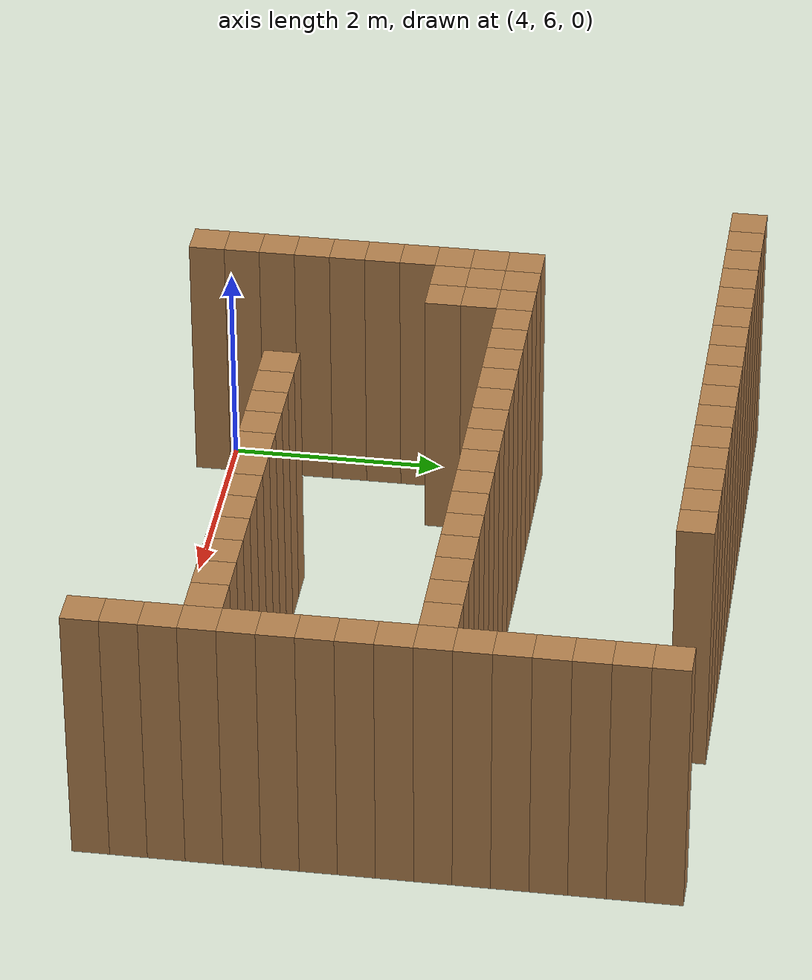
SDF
<sdf version="1.7">
 <model name="maze">
  <static>true</static>
  <link name="Wall_9">
   <collision name="Wall_9_Collision">
    <geometry><box><size>0.3333333333333333 0.3333333333333333 2.5</size></box></geometry>
    <pose>0 0 1.25 0 0 0</pose>
   </collision>
   <visual name="Wall_9_Visual">
    <pose>0 0 1.25 0 0 0</pose>
    <geometry><box><size>0.3333333333333333 0.3333333333333333 2.5</size></box></geometry>
    <material>
     <script><uri>file://media/materials/scripts/gazebo.material</uri><name>Gazebo/Wood</name></script>
     <ambient>1 1 1 1</ambient>
    </material>
    <meta><layer>0</layer></meta>
   </visual>
   <pose>3.1666666666666665 10.833333333333332 0 0 0 0</pose>
  </link>
  <link name="Wall_10">
   <collision name="Wall_10_Collision">
    <geometry><box><size>0.3333333333333333 0.3333333333333333 2.5</size></box></geometry>
    <pose>0 0 1.25 0 0 0</pose>
   </collision>
   <visual name="Wall_10_Visual">
    <pose>0 0 1.25 0 0 0</pose>
    <geometry><box><size>0.3333333333333333 0.3333333333333333 2.5</size></box></geometry>
    <material>
     <script><uri>file://media/materials/scripts/gazebo.material</uri><name>Gazebo/Wood</name></script>
     <ambient>1 1 1 1</ambient>
    </material>
    <meta><layer>0</layer></meta>
   </visual>
   <pose>3.4999999999999996 10.833333333333332 0 0 0 0</pose>
  </link>
  <link name="Wall_11">
   <collision name="Wall_11_Collision">
    <geometry><box><size>0.3333333333333333 0.3333333333333333 2.5</size></box></geometry>
    <pose>0 0 1.25 0 0 0</pose>
   </collision>
   <visual name="Wall_11_Visual">
    <pose>0 0 1.25 0 0 0</pose>
    <geometry><box><size>0.3333333333333333 0.3333333333333333 2.5</size></box></geometry>
    <material>
     <script><uri>file://media/materials/scripts/gazebo.material</uri><name>Gazebo/Wood</name></script>
     <ambient>1 1 1 1</ambient>
    </material>
    <meta><layer>0</layer></meta>
   </visual>
   <pose>3.833333333333333 10.833333333333332 0 0 0 0</pose>
  </link>
  <link name="Wall_12">
   <collision name="Wall_12_Collision">
    <geometry><box><size>0.3333333333333333 0.3333333333333333 2.5</size></box></geometry>
    <pose>0 0 1.25 0 0 0</pose>
   </collision>
   <visual name="Wall_12_Visual">
    <pose>0 0 1.25 0 0 0</pose>
    <geometry><box><size>0.3333333333333333 0.3333333333333333 2.5</size></box></geometry>
    <material>
     <script><uri>file://media/materials/scripts/gazebo.material</uri><name>Gazebo/Wood</name></script>
     <ambient>1 1 1 1</ambient>
    </material>
    <meta><layer>0</layer></meta>
   </visual>
   <pose>4.166666666666667 10.833333333333332 0 0 0 0</pose>
  </link>
  <link name="Wall_13">
   <collision name="Wall_13_Collision">
    <geometry><box><size>0.3333333333333333 0.3333333333333333 2.5</size></box></geometry>
    <pose>0 0 1.25 0 0 0</pose>
   </collision>
   <visual name="Wall_13_Visual">
    <pose>0 0 1.25 0 0 0</pose>
    <geometry><box><size>0.3333333333333333 0.3333333333333333 2.5</size></box></geometry>
    <material>
     <script><uri>file://media/materials/scripts/gazebo.material</uri><name>Gazebo/Wood</name></script>
     <ambient>1 1 1 1</ambient>
    </material>
    <meta><layer>0</layer></meta>
   </visual>
   <pose>4.5 10.833333333333332 0 0 0 0</pose>
  </link>
  <link name="Wall_14">
   <collision name="Wall_14_Collision">
    <geometry><box><size>0.3333333333333333 0.3333333333333333 2.5</size></box></geometry>
    <pose>0 0 1.25 0 0 0</pose>
   </collision>
   <visual name="Wall_14_Visual">
    <pose>0 0 1.25 0 0 0</pose>
    <geometry><box><size>0.3333333333333333 0.3333333333333333 2.5</size></box></geometry>
    <material>
     <script><uri>file://media/materials/scripts/gazebo.material</uri><name>Gazebo/Wood</name></script>
     <ambient>1 1 1 1</ambient>
    </material>
    <meta><layer>0</layer></meta>
   </visual>
   <pose>4.833333333333333 10.833333333333332 0 0 0 0</pose>
  </link>
  <link name="Wall_15">
   <collision name="Wall_15_Collision">
    <geometry><box><size>0.3333333333333333 0.3333333333333333 2.5</size></box></geometry>
    <pose>0 0 1.25 0 0 0</pose>
   </collision>
   <visual name="Wall_15_Visual">
    <pose>0 0 1.25 0 0 0</pose>
    <geometry><box><size>0.3333333333333333 0.3333333333333333 2.5</size></box></geometry>
    <material>
     <script><uri>file://media/materials/scripts/gazebo.material</uri><name>Gazebo/Wood</name></script>
     <ambient>1 1 1 1</ambient>
    </material>
    <meta><layer>0</layer></meta>
   </visual>
   <pose>5.166666666666667 10.833333333333332 0 0 0 0</pose>
  </link>
  <link name="Wall_16">
   <collision name="Wall_16_Collision">
    <geometry><box><size>0.3333333333333333 0.3333333333333333 2.5</size></box></geometry>
    <pose>0 0 1.25 0 0 0</pose>
   </collision>
   <visual name="Wall_16_Visual">
    <pose>0 0 1.25 0 0 0</pose>
    <geometry><box><size>0.3333333333333333 0.3333333333333333 2.5</size></box></geometry>
    <material>
     <script><uri>file://media/materials/scripts/gazebo.material</uri><name>Gazebo/Wood</name></script>
     <ambient>1 1 1 1</ambient>
    </material>
    <meta><layer>0</layer></meta>
   </visual>
   <pose>5.5 10.833333333333332 0 0 0 0</pose>
  </link>
  <link name="Wall_17">
   <collision name="Wall_17_Collision">
    <geometry><box><size>0.3333333333333333 0.3333333333333333 2.5</size></box></geometry>
    <pose>0 0 1.25 0 0 0</pose>
   </collision>
   <visual name="Wall_17_Visual">
    <pose>0 0 1.25 0 0 0</pose>
    <geometry><box><size>0.3333333333333333 0.3333333333333333 2.5</size></box></geometry>
    <material>
     <script><uri>file://media/materials/scripts/gazebo.material</uri><name>Gazebo/Wood</name></script>
     <ambient>1 1 1 1</ambient>
    </material>
    <meta><layer>0</layer></meta>
   </visual>
   <pose>5.833333333333333 10.833333333333332 0 0 0 0</pose>
  </link>
  <link name="Wall_18">
   <collision name="Wall_18_Collision">
    <geometry><box><size>0.3333333333333333 0.3333333333333333 2.5</size></box></geometry>
    <pose>0 0 1.25 0 0 0</pose>
   </collision>
   <visual name="Wall_18_Visual">
    <pose>0 0 1.25 0 0 0</pose>
    <geometry><box><size>0.3333333333333333 0.3333333333333333 2.5</size></box></geometry>
    <material>
     <script><uri>file://media/materials/scripts/gazebo.material</uri><name>Gazebo/Wood</name></script>
     <ambient>1 1 1 1</ambient>
    </material>
    <meta><layer>0</layer></meta>
   </visual>
   <pose>6.166666666666667 10.833333333333332 0 0 0 0</pose>
  </link>
  <link name="Wall_19">
   <collision name="Wall_19_Collision">
    <geometry><box><size>0.3333333333333333 0.3333333333333333 2.5</size></box></geometry>
    <pose>0 0 1.25 0 0 0</pose>
   </collision>
   <visual name="Wall_19_Visual">
    <pose>0 0 1.25 0 0 0</pose>
    <geometry><box><size>0.3333333333333333 0.3333333333333333 2.5</size></box></geometry>
    <material>
     <script><uri>file://media/materials/scripts/gazebo.material</uri><name>Gazebo/Wood</name></script>
     <ambient>1 1 1 1</ambient>
    </material>
    <meta><layer>0</layer></meta>
   </visual>
   <pose>6.5 10.833333333333332 0 0 0 0</pose>
  </link>
  <link name="Wall_20">
   <collision name="Wall_20_Collision">
    <geometry><box><size>0.3333333333333333 0.3333333333333333 2.5</size></box></geometry>
    <pose>0 0 1.25 0 0 0</pose>
   </collision>
   <visual name="Wall_20_Visual">
    <pose>0 0 1.25 0 0 0</pose>
    <geometry><box><size>0.3333333333333333 0.3333333333333333 2.5</size></box></geometry>
    <material>
     <script><uri>file://media/materials/scripts/gazebo.material</uri><name>Gazebo/Wood</name></script>
     <ambient>1 1 1 1</ambient>
    </material>
    <meta><layer>0</layer></meta>
   </visual>
   <pose>6.833333333333333 10.833333333333332 0 0 0 0</pose>
  </link>
  <link name="Wall_21">
   <collision name="Wall_21_Collision">
    <geometry><box><size>0.3333333333333333 0.3333333333333333 2.5</size></box></geometry>
    <pose>0 0 1.25 0 0 0</pose>
   </collision>
   <visual name="Wall_21_Visual">
    <pose>0 0 1.25 0 0 0</pose>
    <geometry><box><size>0.3333333333333333 0.3333333333333333 2.5</size></box></geometry>
    <material>
     <script><uri>file://media/materials/scripts/gazebo.material</uri><name>Gazebo/Wood</name></script>
     <ambient>1 1 1 1</ambient>
    </material>
    <meta><layer>0</layer></meta>
   </visual>
   <pose>7.166666666666667 10.833333333333332 0 0 0 0</pose>
  </link>
  <link name="Wall_22">
   <collision name="Wall_22_Collision">
    <geometry><box><size>0.3333333333333333 0.3333333333333333 2.5</size></box></geometry>
    <pose>0 0 1.25 0 0 0</pose>
   </collision>
   <visual name="Wall_22_Visual">
    <pose>0 0 1.25 0 0 0</pose>
    <geometry><box><size>0.3333333333333333 0.3333333333333333 2.5</size></box></geometry>
    <material>
     <script><uri>file://media/materials/scripts/gazebo.material</uri><name>Gazebo/Wood</name></script>
     <ambient>1 1 1 1</ambient>
    </material>
    <meta><layer>0</layer></meta>
   </visual>
   <pose>7.5 10.833333333333332 0 0 0 0</pose>
  </link>
  <link name="Wall_23">
   <collision name="Wall_23_Collision">
    <geometry><box><size>0.3333333333333333 0.3333333333333333 2.5</size></box></geometry>
    <pose>0 0 1.25 0 0 0</pose>
   </collision>
   <visual name="Wall_23_Visual">
    <pose>0 0 1.25 0 0 0</pose>
    <geometry><box><size>0.3333333333333333 0.3333333333333333 2.5</size></box></geometry>
    <material>
     <script><uri>file://media/materials/scripts/gazebo.material</uri><name>Gazebo/Wood</name></script>
     <ambient>1 1 1 1</ambient>
    </material>
    <meta><layer>0</layer></meta>
   </visual>
   <pose>7.833333333333333 10.833333333333332 0 0 0 0</pose>
  </link>
  <link name="Wall_24">
   <collision name="Wall_24_Collision">
    <geometry><box><size>0.3333333333333333 0.3333333333333333 2.5</size></box></geometry>
    <pose>0 0 1.25 0 0 0</pose>
   </collision>
   <visual name="Wall_24_Visual">
    <pose>0 0 1.25 0 0 0</pose>
    <geometry><box><size>0.3333333333333333 0.3333333333333333 2.5</size></box></geometry>
    <material>
     <script><uri>file://media/materials/scripts/gazebo.material</uri><name>Gazebo/Wood</name></script>
     <ambient>1 1 1 1</ambient>
    </material>
    <meta><layer>0</layer></meta>
   </visual>
   <pose>8.166666666666666 10.833333333333332 0 0 0 0</pose>
  </link>
  <link name="Wall_25">
   <collision name="Wall_25_Collision">
    <geometry><box><size>0.3333333333333333 0.3333333333333333 2.5</size></box></geometry>
    <pose>0 0 1.25 0 0 0</pose>
   </collision>
   <visual name="Wall_25_Visual">
    <pose>0 0 1.25 0 0 0</pose>
    <geometry><box><size>0.3333333333333333 0.3333333333333333 2.5</size></box></geometry>
    <material>
     <script><uri>file://media/materials/scripts/gazebo.material</uri><name>Gazebo/Wood</name></script>
     <ambient>1 1 1 1</ambient>
    </material>
    <meta><layer>0</layer></meta>
   </visual>
   <pose>10.166666666666666 10.833333333333332 0 0 0 0</pose>
  </link>
  <link name="Wall_32">
   <collision name="Wall_32_Collision">
    <geometry><box><size>0.3333333333333333 0.3333333333333333 2.5</size></box></geometry>
    <pose>0 0 1.25 0 0 0</pose>
   </collision>
   <visual name="Wall_32_Visual">
    <pose>0 0 1.25 0 0 0</pose>
    <geometry><box><size>0.3333333333333333 0.3333333333333333 2.5</size></box></geometry>
    <material>
     <script><uri>file://media/materials/scripts/gazebo.material</uri><name>Gazebo/Wood</name></script>
     <ambient>1 1 1 1</ambient>
    </material>
    <meta><layer>0</layer></meta>
   </visual>
   <pose>10.166666666666666 10.499999999999998 0 0 0 0</pose>
  </link>
  <link name="Wall_39">
   <collision name="Wall_39_Collision">
    <geometry><box><size>0.3333333333333333 0.3333333333333333 2.5</size></box></geometry>
    <pose>0 0 1.25 0 0 0</pose>
   </collision>
   <visual name="Wall_39_Visual">
    <pose>0 0 1.25 0 0 0</pose>
    <geometry><box><size>0.3333333333333333 0.3333333333333333 2.5</size></box></geometry>
    <material>
     <script><uri>file://media/materials/scripts/gazebo.material</uri><name>Gazebo/Wood</name></script>
     <ambient>1 1 1 1</ambient>
    </material>
    <meta><layer>0</layer></meta>
   </visual>
   <pose>10.166666666666666 10.166666666666666 0 0 0 0</pose>
  </link>
  <link name="Wall_42">
   <collision name="Wall_42_Collision">
    <geometry><box><size>0.3333333333333333 0.3333333333333333 2.5</size></box></geometry>
    <pose>0 0 1.25 0 0 0</pose>
   </collision>
   <visual name="Wall_42_Visual">
    <pose>0 0 1.25 0 0 0</pose>
    <geometry><box><size>0.3333333333333333 0.3333333333333333 2.5</size></box></geometry>
    <material>
     <script><uri>file://media/materials/scripts/gazebo.material</uri><name>Gazebo/Wood</name></script>
     <ambient>1 1 1 1</ambient>
    </material>
    <meta><layer>0</layer></meta>
   </visual>
   <pose>10.166666666666666 9.833333333333332 0 0 0 0</pose>
  </link>
  <link name="Wall_45">
   <collision name="Wall_45_Collision">
    <geometry><box><size>0.3333333333333333 0.3333333333333333 2.5</size></box></geometry>
    <pose>0 0 1.25 0 0 0</pose>
   </collision>
   <visual name="Wall_45_Visual">
    <pose>0 0 1.25 0 0 0</pose>
    <geometry><box><size>0.3333333333333333 0.3333333333333333 2.5</size></box></geometry>
    <material>
     <script><uri>file://media/materials/scripts/gazebo.material</uri><name>Gazebo/Wood</name></script>
     <ambient>1 1 1 1</ambient>
    </material>
    <meta><layer>0</layer></meta>
   </visual>
   <pose>10.166666666666666 9.499999999999998 0 0 0 0</pose>
  </link>
  <link name="Wall_48">
   <collision name="Wall_48_Collision">
    <geometry><box><size>0.3333333333333333 0.3333333333333333 2.5</size></box></geometry>
    <pose>0 0 1.25 0 0 0</pose>
   </collision>
   <visual name="Wall_48_Visual">
    <pose>0 0 1.25 0 0 0</pose>
    <geometry><box><size>0.3333333333333333 0.3333333333333333 2.5</size></box></geometry>
    <material>
     <script><uri>file://media/materials/scripts/gazebo.material</uri><name>Gazebo/Wood</name></script>
     <ambient>1 1 1 1</ambient>
    </material>
    <meta><layer>0</layer></meta>
   </visual>
   <pose>10.166666666666666 9.166666666666666 0 0 0 0</pose>
  </link>
  <link name="Wall_51">
   <collision name="Wall_51_Collision">
    <geometry><box><size>0.3333333333333333 0.3333333333333333 2.5</size></box></geometry>
    <pose>0 0 1.25 0 0 0</pose>
   </collision>
   <visual name="Wall_51_Visual">
    <pose>0 0 1.25 0 0 0</pose>
    <geometry><box><size>0.3333333333333333 0.3333333333333333 2.5</size></box></geometry>
    <material>
     <script><uri>file://media/materials/scripts/gazebo.material</uri><name>Gazebo/Wood</name></script>
     <ambient>1 1 1 1</ambient>
    </material>
    <meta><layer>0</layer></meta>
   </visual>
   <pose>4.166666666666667 8.833333333333332 0 0 0 0</pose>
  </link>
  <link name="Wall_52">
   <collision name="Wall_52_Collision">
    <geometry><box><size>0.3333333333333333 0.3333333333333333 2.5</size></box></geometry>
    <pose>0 0 1.25 0 0 0</pose>
   </collision>
   <visual name="Wall_52_Visual">
    <pose>0 0 1.25 0 0 0</pose>
    <geometry><box><size>0.3333333333333333 0.3333333333333333 2.5</size></box></geometry>
    <material>
     <script><uri>file://media/materials/scripts/gazebo.material</uri><name>Gazebo/Wood</name></script>
     <ambient>1 1 1 1</ambient>
    </material>
    <meta><layer>0</layer></meta>
   </visual>
   <pose>4.5 8.833333333333332 0 0 0 0</pose>
  </link>
  <link name="Wall_53">
   <collision name="Wall_53_Collision">
    <geometry><box><size>0.3333333333333333 0.3333333333333333 2.5</size></box></geometry>
    <pose>0 0 1.25 0 0 0</pose>
   </collision>
   <visual name="Wall_53_Visual">
    <pose>0 0 1.25 0 0 0</pose>
    <geometry><box><size>0.3333333333333333 0.3333333333333333 2.5</size></box></geometry>
    <material>
     <script><uri>file://media/materials/scripts/gazebo.material</uri><name>Gazebo/Wood</name></script>
     <ambient>1 1 1 1</ambient>
    </material>
    <meta><layer>0</layer></meta>
   </visual>
   <pose>4.833333333333333 8.833333333333332 0 0 0 0</pose>
  </link>
  <link name="Wall_54">
   <collision name="Wall_54_Collision">
    <geometry><box><size>0.3333333333333333 0.3333333333333333 2.5</size></box></geometry>
    <pose>0 0 1.25 0 0 0</pose>
   </collision>
   <visual name="Wall_54_Visual">
    <pose>0 0 1.25 0 0 0</pose>
    <geometry><box><size>0.3333333333333333 0.3333333333333333 2.5</size></box></geometry>
    <material>
     <script><uri>file://media/materials/scripts/gazebo.material</uri><name>Gazebo/Wood</name></script>
     <ambient>1 1 1 1</ambient>
    </material>
    <meta><layer>0</layer></meta>
   </visual>
   <pose>5.166666666666667 8.833333333333332 0 0 0 0</pose>
  </link>
  <link name="Wall_55">
   <collision name="Wall_55_Collision">
    <geometry><box><size>0.3333333333333333 0.3333333333333333 2.5</size></box></geometry>
    <pose>0 0 1.25 0 0 0</pose>
   </collision>
   <visual name="Wall_55_Visual">
    <pose>0 0 1.25 0 0 0</pose>
    <geometry><box><size>0.3333333333333333 0.3333333333333333 2.5</size></box></geometry>
    <material>
     <script><uri>file://media/materials/scripts/gazebo.material</uri><name>Gazebo/Wood</name></script>
     <ambient>1 1 1 1</ambient>
    </material>
    <meta><layer>0</layer></meta>
   </visual>
   <pose>5.5 8.833333333333332 0 0 0 0</pose>
  </link>
  <link name="Wall_56">
   <collision name="Wall_56_Collision">
    <geometry><box><size>0.3333333333333333 0.3333333333333333 2.5</size></box></geometry>
    <pose>0 0 1.25 0 0 0</pose>
   </collision>
   <visual name="Wall_56_Visual">
    <pose>0 0 1.25 0 0 0</pose>
    <geometry><box><size>0.3333333333333333 0.3333333333333333 2.5</size></box></geometry>
    <material>
     <script><uri>file://media/materials/scripts/gazebo.material</uri><name>Gazebo/Wood</name></script>
     <ambient>1 1 1 1</ambient>
    </material>
    <meta><layer>0</layer></meta>
   </visual>
   <pose>5.833333333333333 8.833333333333332 0 0 0 0</pose>
  </link>
  <link name="Wall_57">
   <collision name="Wall_57_Collision">
    <geometry><box><size>0.3333333333333333 0.3333333333333333 2.5</size></box></geometry>
    <pose>0 0 1.25 0 0 0</pose>
   </collision>
   <visual name="Wall_57_Visual">
    <pose>0 0 1.25 0 0 0</pose>
    <geometry><box><size>0.3333333333333333 0.3333333333333333 2.5</size></box></geometry>
    <material>
     <script><uri>file://media/materials/scripts/gazebo.material</uri><name>Gazebo/Wood</name></script>
     <ambient>1 1 1 1</ambient>
    </material>
    <meta><layer>0</layer></meta>
   </visual>
   <pose>6.166666666666667 8.833333333333332 0 0 0 0</pose>
  </link>
  <link name="Wall_58">
   <collision name="Wall_58_Collision">
    <geometry><box><size>0.3333333333333333 0.3333333333333333 2.5</size></box></geometry>
    <pose>0 0 1.25 0 0 0</pose>
   </collision>
   <visual name="Wall_58_Visual">
    <pose>0 0 1.25 0 0 0</pose>
    <geometry><box><size>0.3333333333333333 0.3333333333333333 2.5</size></box></geometry>
    <material>
     <script><uri>file://media/materials/scripts/gazebo.material</uri><name>Gazebo/Wood</name></script>
     <ambient>1 1 1 1</ambient>
    </material>
    <meta><layer>0</layer></meta>
   </visual>
   <pose>6.5 8.833333333333332 0 0 0 0</pose>
  </link>
  <link name="Wall_59">
   <collision name="Wall_59_Collision">
    <geometry><box><size>0.3333333333333333 0.3333333333333333 2.5</size></box></geometry>
    <pose>0 0 1.25 0 0 0</pose>
   </collision>
   <visual name="Wall_59_Visual">
    <pose>0 0 1.25 0 0 0</pose>
    <geometry><box><size>0.3333333333333333 0.3333333333333333 2.5</size></box></geometry>
    <material>
     <script><uri>file://media/materials/scripts/gazebo.material</uri><name>Gazebo/Wood</name></script>
     <ambient>1 1 1 1</ambient>
    </material>
    <meta><layer>0</layer></meta>
   </visual>
   <pose>6.833333333333333 8.833333333333332 0 0 0 0</pose>
  </link>
  <link name="Wall_60">
   <collision name="Wall_60_Collision">
    <geometry><box><size>0.3333333333333333 0.3333333333333333 2.5</size></box></geometry>
    <pose>0 0 1.25 0 0 0</pose>
   </collision>
   <visual name="Wall_60_Visual">
    <pose>0 0 1.25 0 0 0</pose>
    <geometry><box><size>0.3333333333333333 0.3333333333333333 2.5</size></box></geometry>
    <material>
     <script><uri>file://media/materials/scripts/gazebo.material</uri><name>Gazebo/Wood</name></script>
     <ambient>1 1 1 1</ambient>
    </material>
    <meta><layer>0</layer></meta>
   </visual>
   <pose>7.166666666666667 8.833333333333332 0 0 0 0</pose>
  </link>
  <link name="Wall_61">
   <collision name="Wall_61_Collision">
    <geometry><box><size>0.3333333333333333 0.3333333333333333 2.5</size></box></geometry>
    <pose>0 0 1.25 0 0 0</pose>
   </collision>
   <visual name="Wall_61_Visual">
    <pose>0 0 1.25 0 0 0</pose>
    <geometry><box><size>0.3333333333333333 0.3333333333333333 2.5</size></box></geometry>
    <material>
     <script><uri>file://media/materials/scripts/gazebo.material</uri><name>Gazebo/Wood</name></script>
     <ambient>1 1 1 1</ambient>
    </material>
    <meta><layer>0</layer></meta>
   </visual>
   <pose>7.5 8.833333333333332 0 0 0 0</pose>
  </link>
  <link name="Wall_62">
   <collision name="Wall_62_Collision">
    <geometry><box><size>0.3333333333333333 0.3333333333333333 2.5</size></box></geometry>
    <pose>0 0 1.25 0 0 0</pose>
   </collision>
   <visual name="Wall_62_Visual">
    <pose>0 0 1.25 0 0 0</pose>
    <geometry><box><size>0.3333333333333333 0.3333333333333333 2.5</size></box></geometry>
    <material>
     <script><uri>file://media/materials/scripts/gazebo.material</uri><name>Gazebo/Wood</name></script>
     <ambient>1 1 1 1</ambient>
    </material>
    <meta><layer>0</layer></meta>
   </visual>
   <pose>7.833333333333333 8.833333333333332 0 0 0 0</pose>
  </link>
  <link name="Wall_63">
   <collision name="Wall_63_Collision">
    <geometry><box><size>0.3333333333333333 0.3333333333333333 2.5</size></box></geometry>
    <pose>0 0 1.25 0 0 0</pose>
   </collision>
   <visual name="Wall_63_Visual">
    <pose>0 0 1.25 0 0 0</pose>
    <geometry><box><size>0.3333333333333333 0.3333333333333333 2.5</size></box></geometry>
    <material>
     <script><uri>file://media/materials/scripts/gazebo.material</uri><name>Gazebo/Wood</name></script>
     <ambient>1 1 1 1</ambient>
    </material>
    <meta><layer>0</layer></meta>
   </visual>
   <pose>8.166666666666666 8.833333333333332 0 0 0 0</pose>
  </link>
  <link name="Wall_64">
   <collision name="Wall_64_Collision">
    <geometry><box><size>0.3333333333333333 0.3333333333333333 2.5</size></box></geometry>
    <pose>0 0 1.25 0 0 0</pose>
   </collision>
   <visual name="Wall_64_Visual">
    <pose>0 0 1.25 0 0 0</pose>
    <geometry><box><size>0.3333333333333333 0.3333333333333333 2.5</size></box></geometry>
    <material>
     <script><uri>file://media/materials/scripts/gazebo.material</uri><name>Gazebo/Wood</name></script>
     <ambient>1 1 1 1</ambient>
    </material>
    <meta><layer>0</layer></meta>
   </visual>
   <pose>8.499999999999998 8.833333333333332 0 0 0 0</pose>
  </link>
  <link name="Wall_65">
   <collision name="Wall_65_Collision">
    <geometry><box><size>0.3333333333333333 0.3333333333333333 2.5</size></box></geometry>
    <pose>0 0 1.25 0 0 0</pose>
   </collision>
   <visual name="Wall_65_Visual">
    <pose>0 0 1.25 0 0 0</pose>
    <geometry><box><size>0.3333333333333333 0.3333333333333333 2.5</size></box></geometry>
    <material>
     <script><uri>file://media/materials/scripts/gazebo.material</uri><name>Gazebo/Wood</name></script>
     <ambient>1 1 1 1</ambient>
    </material>
    <meta><layer>0</layer></meta>
   </visual>
   <pose>8.833333333333332 8.833333333333332 0 0 0 0</pose>
  </link>
  <link name="Wall_66">
   <collision name="Wall_66_Collision">
    <geometry><box><size>0.3333333333333333 0.3333333333333333 2.5</size></box></geometry>
    <pose>0 0 1.25 0 0 0</pose>
   </collision>
   <visual name="Wall_66_Visual">
    <pose>0 0 1.25 0 0 0</pose>
    <geometry><box><size>0.3333333333333333 0.3333333333333333 2.5</size></box></geometry>
    <material>
     <script><uri>file://media/materials/scripts/gazebo.material</uri><name>Gazebo/Wood</name></script>
     <ambient>1 1 1 1</ambient>
    </material>
    <meta><layer>0</layer></meta>
   </visual>
   <pose>9.166666666666666 8.833333333333332 0 0 0 0</pose>
  </link>
  <link name="Wall_67">
   <collision name="Wall_67_Collision">
    <geometry><box><size>0.3333333333333333 0.3333333333333333 2.5</size></box></geometry>
    <pose>0 0 1.25 0 0 0</pose>
   </collision>
   <visual name="Wall_67_Visual">
    <pose>0 0 1.25 0 0 0</pose>
    <geometry><box><size>0.3333333333333333 0.3333333333333333 2.5</size></box></geometry>
    <material>
     <script><uri>file://media/materials/scripts/gazebo.material</uri><name>Gazebo/Wood</name></script>
     <ambient>1 1 1 1</ambient>
    </material>
    <meta><layer>0</layer></meta>
   </visual>
   <pose>9.499999999999998 8.833333333333332 0 0 0 0</pose>
  </link>
  <link name="Wall_68">
   <collision name="Wall_68_Collision">
    <geometry><box><size>0.3333333333333333 0.3333333333333333 2.5</size></box></geometry>
    <pose>0 0 1.25 0 0 0</pose>
   </collision>
   <visual name="Wall_68_Visual">
    <pose>0 0 1.25 0 0 0</pose>
    <geometry><box><size>0.3333333333333333 0.3333333333333333 2.5</size></box></geometry>
    <material>
     <script><uri>file://media/materials/scripts/gazebo.material</uri><name>Gazebo/Wood</name></script>
     <ambient>1 1 1 1</ambient>
    </material>
    <meta><layer>0</layer></meta>
   </visual>
   <pose>9.833333333333332 8.833333333333332 0 0 0 0</pose>
  </link>
  <link name="Wall_69">
   <collision name="Wall_69_Collision">
    <geometry><box><size>0.3333333333333333 0.3333333333333333 2.5</size></box></geometry>
    <pose>0 0 1.25 0 0 0</pose>
   </collision>
   <visual name="Wall_69_Visual">
    <pose>0 0 1.25 0 0 0</pose>
    <geometry><box><size>0.3333333333333333 0.3333333333333333 2.5</size></box></geometry>
    <material>
     <script><uri>file://media/materials/scripts/gazebo.material</uri><name>Gazebo/Wood</name></script>
     <ambient>1 1 1 1</ambient>
    </material>
    <meta><layer>0</layer></meta>
   </visual>
   <pose>10.166666666666666 8.833333333333332 0 0 0 0</pose>
  </link>
  <link name="Wall_72">
   <collision name="Wall_72_Collision">
    <geometry><box><size>0.3333333333333333 0.3333333333333333 2.5</size></box></geometry>
    <pose>0 0 1.25 0 0 0</pose>
   </collision>
   <visual name="Wall_72_Visual">
    <pose>0 0 1.25 0 0 0</pose>
    <geometry><box><size>0.3333333333333333 0.3333333333333333 2.5</size></box></geometry>
    <material>
     <script><uri>file://media/materials/scripts/gazebo.material</uri><name>Gazebo/Wood</name></script>
     <ambient>1 1 1 1</ambient>
    </material>
    <meta><layer>0</layer></meta>
   </visual>
   <pose>4.166666666666667 8.499999999999998 0 0 0 0</pose>
  </link>
  <link name="Wall_73">
   <collision name="Wall_73_Collision">
    <geometry><box><size>0.3333333333333333 0.3333333333333333 2.5</size></box></geometry>
    <pose>0 0 1.25 0 0 0</pose>
   </collision>
   <visual name="Wall_73_Visual">
    <pose>0 0 1.25 0 0 0</pose>
    <geometry><box><size>0.3333333333333333 0.3333333333333333 2.5</size></box></geometry>
    <material>
     <script><uri>file://media/materials/scripts/gazebo.material</uri><name>Gazebo/Wood</name></script>
     <ambient>1 1 1 1</ambient>
    </material>
    <meta><layer>0</layer></meta>
   </visual>
   <pose>4.5 8.499999999999998 0 0 0 0</pose>
  </link>
  <link name="Wall_74">
   <collision name="Wall_74_Collision">
    <geometry><box><size>0.3333333333333333 0.3333333333333333 2.5</size></box></geometry>
    <pose>0 0 1.25 0 0 0</pose>
   </collision>
   <visual name="Wall_74_Visual">
    <pose>0 0 1.25 0 0 0</pose>
    <geometry><box><size>0.3333333333333333 0.3333333333333333 2.5</size></box></geometry>
    <material>
     <script><uri>file://media/materials/scripts/gazebo.material</uri><name>Gazebo/Wood</name></script>
     <ambient>1 1 1 1</ambient>
    </material>
    <meta><layer>0</layer></meta>
   </visual>
   <pose>4.833333333333333 8.499999999999998 0 0 0 0</pose>
  </link>
  <link name="Wall_75">
   <collision name="Wall_75_Collision">
    <geometry><box><size>0.3333333333333333 0.3333333333333333 2.5</size></box></geometry>
    <pose>0 0 1.25 0 0 0</pose>
   </collision>
   <visual name="Wall_75_Visual">
    <pose>0 0 1.25 0 0 0</pose>
    <geometry><box><size>0.3333333333333333 0.3333333333333333 2.5</size></box></geometry>
    <material>
     <script><uri>file://media/materials/scripts/gazebo.material</uri><name>Gazebo/Wood</name></script>
     <ambient>1 1 1 1</ambient>
    </material>
    <meta><layer>0</layer></meta>
   </visual>
   <pose>10.166666666666666 8.499999999999998 0 0 0 0</pose>
  </link>
  <link name="Wall_78">
   <collision name="Wall_78_Collision">
    <geometry><box><size>0.3333333333333333 0.3333333333333333 2.5</size></box></geometry>
    <pose>0 0 1.25 0 0 0</pose>
   </collision>
   <visual name="Wall_78_Visual">
    <pose>0 0 1.25 0 0 0</pose>
    <geometry><box><size>0.3333333333333333 0.3333333333333333 2.5</size></box></geometry>
    <material>
     <script><uri>file://media/materials/scripts/gazebo.material</uri><name>Gazebo/Wood</name></script>
     <ambient>1 1 1 1</ambient>
    </material>
    <meta><layer>0</layer></meta>
   </visual>
   <pose>4.166666666666667 8.166666666666666 0 0 0 0</pose>
  </link>
  <link name="Wall_79">
   <collision name="Wall_79_Collision">
    <geometry><box><size>0.3333333333333333 0.3333333333333333 2.5</size></box></geometry>
    <pose>0 0 1.25 0 0 0</pose>
   </collision>
   <visual name="Wall_79_Visual">
    <pose>0 0 1.25 0 0 0</pose>
    <geometry><box><size>0.3333333333333333 0.3333333333333333 2.5</size></box></geometry>
    <material>
     <script><uri>file://media/materials/scripts/gazebo.material</uri><name>Gazebo/Wood</name></script>
     <ambient>1 1 1 1</ambient>
    </material>
    <meta><layer>0</layer></meta>
   </visual>
   <pose>4.5 8.166666666666666 0 0 0 0</pose>
  </link>
  <link name="Wall_80">
   <collision name="Wall_80_Collision">
    <geometry><box><size>0.3333333333333333 0.3333333333333333 2.5</size></box></geometry>
    <pose>0 0 1.25 0 0 0</pose>
   </collision>
   <visual name="Wall_80_Visual">
    <pose>0 0 1.25 0 0 0</pose>
    <geometry><box><size>0.3333333333333333 0.3333333333333333 2.5</size></box></geometry>
    <material>
     <script><uri>file://media/materials/scripts/gazebo.material</uri><name>Gazebo/Wood</name></script>
     <ambient>1 1 1 1</ambient>
    </material>
    <meta><layer>0</layer></meta>
   </visual>
   <pose>4.833333333333333 8.166666666666666 0 0 0 0</pose>
  </link>
  <link name="Wall_81">
   <collision name="Wall_81_Collision">
    <geometry><box><size>0.3333333333333333 0.3333333333333333 2.5</size></box></geometry>
    <pose>0 0 1.25 0 0 0</pose>
   </collision>
   <visual name="Wall_81_Visual">
    <pose>0 0 1.25 0 0 0</pose>
    <geometry><box><size>0.3333333333333333 0.3333333333333333 2.5</size></box></geometry>
    <material>
     <script><uri>file://media/materials/scripts/gazebo.material</uri><name>Gazebo/Wood</name></script>
     <ambient>1 1 1 1</ambient>
    </material>
    <meta><layer>0</layer></meta>
   </visual>
   <pose>10.166666666666666 8.166666666666666 0 0 0 0</pose>
  </link>
  <link name="Wall_84">
   <collision name="Wall_84_Collision">
    <geometry><box><size>0.3333333333333333 0.3333333333333333 2.5</size></box></geometry>
    <pose>0 0 1.25 0 0 0</pose>
   </collision>
   <visual name="Wall_84_Visual">
    <pose>0 0 1.25 0 0 0</pose>
    <geometry><box><size>0.3333333333333333 0.3333333333333333 2.5</size></box></geometry>
    <material>
     <script><uri>file://media/materials/scripts/gazebo.material</uri><name>Gazebo/Wood</name></script>
     <ambient>1 1 1 1</ambient>
    </material>
    <meta><layer>0</layer></meta>
   </visual>
   <pose>4.166666666666667 7.833333333333333 0 0 0 0</pose>
  </link>
  <link name="Wall_85">
   <collision name="Wall_85_Collision">
    <geometry><box><size>0.3333333333333333 0.3333333333333333 2.5</size></box></geometry>
    <pose>0 0 1.25 0 0 0</pose>
   </collision>
   <visual name="Wall_85_Visual">
    <pose>0 0 1.25 0 0 0</pose>
    <geometry><box><size>0.3333333333333333 0.3333333333333333 2.5</size></box></geometry>
    <material>
     <script><uri>file://media/materials/scripts/gazebo.material</uri><name>Gazebo/Wood</name></script>
     <ambient>1 1 1 1</ambient>
    </material>
    <meta><layer>0</layer></meta>
   </visual>
   <pose>10.166666666666666 7.833333333333333 0 0 0 0</pose>
  </link>
  <link name="Wall_88">
   <collision name="Wall_88_Collision">
    <geometry><box><size>0.3333333333333333 0.3333333333333333 2.5</size></box></geometry>
    <pose>0 0 1.25 0 0 0</pose>
   </collision>
   <visual name="Wall_88_Visual">
    <pose>0 0 1.25 0 0 0</pose>
    <geometry><box><size>0.3333333333333333 0.3333333333333333 2.5</size></box></geometry>
    <material>
     <script><uri>file://media/materials/scripts/gazebo.material</uri><name>Gazebo/Wood</name></script>
     <ambient>1 1 1 1</ambient>
    </material>
    <meta><layer>0</layer></meta>
   </visual>
   <pose>4.166666666666667 7.5 0 0 0 0</pose>
  </link>
  <link name="Wall_89">
   <collision name="Wall_89_Collision">
    <geometry><box><size>0.3333333333333333 0.3333333333333333 2.5</size></box></geometry>
    <pose>0 0 1.25 0 0 0</pose>
   </collision>
   <visual name="Wall_89_Visual">
    <pose>0 0 1.25 0 0 0</pose>
    <geometry><box><size>0.3333333333333333 0.3333333333333333 2.5</size></box></geometry>
    <material>
     <script><uri>file://media/materials/scripts/gazebo.material</uri><name>Gazebo/Wood</name></script>
     <ambient>1 1 1 1</ambient>
    </material>
    <meta><layer>0</layer></meta>
   </visual>
   <pose>10.166666666666666 7.5 0 0 0 0</pose>
  </link>
  <link name="Wall_92">
   <collision name="Wall_92_Collision">
    <geometry><box><size>0.3333333333333333 0.3333333333333333 2.5</size></box></geometry>
    <pose>0 0 1.25 0 0 0</pose>
   </collision>
   <visual name="Wall_92_Visual">
    <pose>0 0 1.25 0 0 0</pose>
    <geometry><box><size>0.3333333333333333 0.3333333333333333 2.5</size></box></geometry>
    <material>
     <script><uri>file://media/materials/scripts/gazebo.material</uri><name>Gazebo/Wood</name></script>
     <ambient>1 1 1 1</ambient>
    </material>
    <meta><layer>0</layer></meta>
   </visual>
   <pose>4.166666666666667 7.166666666666667 0 0 0 0</pose>
  </link>
  <link name="Wall_93">
   <collision name="Wall_93_Collision">
    <geometry><box><size>0.3333333333333333 0.3333333333333333 2.5</size></box></geometry>
    <pose>0 0 1.25 0 0 0</pose>
   </collision>
   <visual name="Wall_93_Visual">
    <pose>0 0 1.25 0 0 0</pose>
    <geometry><box><size>0.3333333333333333 0.3333333333333333 2.5</size></box></geometry>
    <material>
     <script><uri>file://media/materials/scripts/gazebo.material</uri><name>Gazebo/Wood</name></script>
     <ambient>1 1 1 1</ambient>
    </material>
    <meta><layer>0</layer></meta>
   </visual>
   <pose>10.166666666666666 7.166666666666667 0 0 0 0</pose>
  </link>
  <link name="Wall_96">
   <collision name="Wall_96_Collision">
    <geometry><box><size>0.3333333333333333 0.3333333333333333 2.5</size></box></geometry>
    <pose>0 0 1.25 0 0 0</pose>
   </collision>
   <visual name="Wall_96_Visual">
    <pose>0 0 1.25 0 0 0</pose>
    <geometry><box><size>0.3333333333333333 0.3333333333333333 2.5</size></box></geometry>
    <material>
     <script><uri>file://media/materials/scripts/gazebo.material</uri><name>Gazebo/Wood</name></script>
     <ambient>1 1 1 1</ambient>
    </material>
    <meta><layer>0</layer></meta>
   </visual>
   <pose>4.166666666666667 6.833333333333333 0 0 0 0</pose>
  </link>
  <link name="Wall_97">
   <collision name="Wall_97_Collision">
    <geometry><box><size>0.3333333333333333 0.3333333333333333 2.5</size></box></geometry>
    <pose>0 0 1.25 0 0 0</pose>
   </collision>
   <visual name="Wall_97_Visual">
    <pose>0 0 1.25 0 0 0</pose>
    <geometry><box><size>0.3333333333333333 0.3333333333333333 2.5</size></box></geometry>
    <material>
     <script><uri>file://media/materials/scripts/gazebo.material</uri><name>Gazebo/Wood</name></script>
     <ambient>1 1 1 1</ambient>
    </material>
    <meta><layer>0</layer></meta>
   </visual>
   <pose>6.166666666666667 6.833333333333333 0 0 0 0</pose>
  </link>
  <link name="Wall_98">
   <collision name="Wall_98_Collision">
    <geometry><box><size>0.3333333333333333 0.3333333333333333 2.5</size></box></geometry>
    <pose>0 0 1.25 0 0 0</pose>
   </collision>
   <visual name="Wall_98_Visual">
    <pose>0 0 1.25 0 0 0</pose>
    <geometry><box><size>0.3333333333333333 0.3333333333333333 2.5</size></box></geometry>
    <material>
     <script><uri>file://media/materials/scripts/gazebo.material</uri><name>Gazebo/Wood</name></script>
     <ambient>1 1 1 1</ambient>
    </material>
    <meta><layer>0</layer></meta>
   </visual>
   <pose>6.5 6.833333333333333 0 0 0 0</pose>
  </link>
  <link name="Wall_99">
   <collision name="Wall_99_Collision">
    <geometry><box><size>0.3333333333333333 0.3333333333333333 2.5</size></box></geometry>
    <pose>0 0 1.25 0 0 0</pose>
   </collision>
   <visual name="Wall_99_Visual">
    <pose>0 0 1.25 0 0 0</pose>
    <geometry><box><size>0.3333333333333333 0.3333333333333333 2.5</size></box></geometry>
    <material>
     <script><uri>file://media/materials/scripts/gazebo.material</uri><name>Gazebo/Wood</name></script>
     <ambient>1 1 1 1</ambient>
    </material>
    <meta><layer>0</layer></meta>
   </visual>
   <pose>6.833333333333333 6.833333333333333 0 0 0 0</pose>
  </link>
  <link name="Wall_100">
   <collision name="Wall_100_Collision">
    <geometry><box><size>0.3333333333333333 0.3333333333333333 2.5</size></box></geometry>
    <pose>0 0 1.25 0 0 0</pose>
   </collision>
   <visual name="Wall_100_Visual">
    <pose>0 0 1.25 0 0 0</pose>
    <geometry><box><size>0.3333333333333333 0.3333333333333333 2.5</size></box></geometry>
    <material>
     <script><uri>file://media/materials/scripts/gazebo.material</uri><name>Gazebo/Wood</name></script>
     <ambient>1 1 1 1</ambient>
    </material>
    <meta><layer>0</layer></meta>
   </visual>
   <pose>7.166666666666667 6.833333333333333 0 0 0 0</pose>
  </link>
  <link name="Wall_101">
   <collision name="Wall_101_Collision">
    <geometry><box><size>0.3333333333333333 0.3333333333333333 2.5</size></box></geometry>
    <pose>0 0 1.25 0 0 0</pose>
   </collision>
   <visual name="Wall_101_Visual">
    <pose>0 0 1.25 0 0 0</pose>
    <geometry><box><size>0.3333333333333333 0.3333333333333333 2.5</size></box></geometry>
    <material>
     <script><uri>file://media/materials/scripts/gazebo.material</uri><name>Gazebo/Wood</name></script>
     <ambient>1 1 1 1</ambient>
    </material>
    <meta><layer>0</layer></meta>
   </visual>
   <pose>7.5 6.833333333333333 0 0 0 0</pose>
  </link>
  <link name="Wall_102">
   <collision name="Wall_102_Collision">
    <geometry><box><size>0.3333333333333333 0.3333333333333333 2.5</size></box></geometry>
    <pose>0 0 1.25 0 0 0</pose>
   </collision>
   <visual name="Wall_102_Visual">
    <pose>0 0 1.25 0 0 0</pose>
    <geometry><box><size>0.3333333333333333 0.3333333333333333 2.5</size></box></geometry>
    <material>
     <script><uri>file://media/materials/scripts/gazebo.material</uri><name>Gazebo/Wood</name></script>
     <ambient>1 1 1 1</ambient>
    </material>
    <meta><layer>0</layer></meta>
   </visual>
   <pose>7.833333333333333 6.833333333333333 0 0 0 0</pose>
  </link>
  <link name="Wall_103">
   <collision name="Wall_103_Collision">
    <geometry><box><size>0.3333333333333333 0.3333333333333333 2.5</size></box></geometry>
    <pose>0 0 1.25 0 0 0</pose>
   </collision>
   <visual name="Wall_103_Visual">
    <pose>0 0 1.25 0 0 0</pose>
    <geometry><box><size>0.3333333333333333 0.3333333333333333 2.5</size></box></geometry>
    <material>
     <script><uri>file://media/materials/scripts/gazebo.material</uri><name>Gazebo/Wood</name></script>
     <ambient>1 1 1 1</ambient>
    </material>
    <meta><layer>0</layer></meta>
   </visual>
   <pose>8.166666666666666 6.833333333333333 0 0 0 0</pose>
  </link>
  <link name="Wall_104">
   <collision name="Wall_104_Collision">
    <geometry><box><size>0.3333333333333333 0.3333333333333333 2.5</size></box></geometry>
    <pose>0 0 1.25 0 0 0</pose>
   </collision>
   <visual name="Wall_104_Visual">
    <pose>0 0 1.25 0 0 0</pose>
    <geometry><box><size>0.3333333333333333 0.3333333333333333 2.5</size></box></geometry>
    <material>
     <script><uri>file://media/materials/scripts/gazebo.material</uri><name>Gazebo/Wood</name></script>
     <ambient>1 1 1 1</ambient>
    </material>
    <meta><layer>0</layer></meta>
   </visual>
   <pose>8.499999999999998 6.833333333333333 0 0 0 0</pose>
  </link>
  <link name="Wall_105">
   <collision name="Wall_105_Collision">
    <geometry><box><size>0.3333333333333333 0.3333333333333333 2.5</size></box></geometry>
    <pose>0 0 1.25 0 0 0</pose>
   </collision>
   <visual name="Wall_105_Visual">
    <pose>0 0 1.25 0 0 0</pose>
    <geometry><box><size>0.3333333333333333 0.3333333333333333 2.5</size></box></geometry>
    <material>
     <script><uri>file://media/materials/scripts/gazebo.material</uri><name>Gazebo/Wood</name></script>
     <ambient>1 1 1 1</ambient>
    </material>
    <meta><layer>0</layer></meta>
   </visual>
   <pose>8.833333333333332 6.833333333333333 0 0 0 0</pose>
  </link>
  <link name="Wall_106">
   <collision name="Wall_106_Collision">
    <geometry><box><size>0.3333333333333333 0.3333333333333333 2.5</size></box></geometry>
    <pose>0 0 1.25 0 0 0</pose>
   </collision>
   <visual name="Wall_106_Visual">
    <pose>0 0 1.25 0 0 0</pose>
    <geometry><box><size>0.3333333333333333 0.3333333333333333 2.5</size></box></geometry>
    <material>
     <script><uri>file://media/materials/scripts/gazebo.material</uri><name>Gazebo/Wood</name></script>
     <ambient>1 1 1 1</ambient>
    </material>
    <meta><layer>0</layer></meta>
   </visual>
   <pose>9.166666666666666 6.833333333333333 0 0 0 0</pose>
  </link>
  <link name="Wall_107">
   <collision name="Wall_107_Collision">
    <geometry><box><size>0.3333333333333333 0.3333333333333333 2.5</size></box></geometry>
    <pose>0 0 1.25 0 0 0</pose>
   </collision>
   <visual name="Wall_107_Visual">
    <pose>0 0 1.25 0 0 0</pose>
    <geometry><box><size>0.3333333333333333 0.3333333333333333 2.5</size></box></geometry>
    <material>
     <script><uri>file://media/materials/scripts/gazebo.material</uri><name>Gazebo/Wood</name></script>
     <ambient>1 1 1 1</ambient>
    </material>
    <meta><layer>0</layer></meta>
   </visual>
   <pose>9.499999999999998 6.833333333333333 0 0 0 0</pose>
  </link>
  <link name="Wall_108">
   <collision name="Wall_108_Collision">
    <geometry><box><size>0.3333333333333333 0.3333333333333333 2.5</size></box></geometry>
    <pose>0 0 1.25 0 0 0</pose>
   </collision>
   <visual name="Wall_108_Visual">
    <pose>0 0 1.25 0 0 0</pose>
    <geometry><box><size>0.3333333333333333 0.3333333333333333 2.5</size></box></geometry>
    <material>
     <script><uri>file://media/materials/scripts/gazebo.material</uri><name>Gazebo/Wood</name></script>
     <ambient>1 1 1 1</ambient>
    </material>
    <meta><layer>0</layer></meta>
   </visual>
   <pose>9.833333333333332 6.833333333333333 0 0 0 0</pose>
  </link>
  <link name="Wall_109">
   <collision name="Wall_109_Collision">
    <geometry><box><size>0.3333333333333333 0.3333333333333333 2.5</size></box></geometry>
    <pose>0 0 1.25 0 0 0</pose>
   </collision>
   <visual name="Wall_109_Visual">
    <pose>0 0 1.25 0 0 0</pose>
    <geometry><box><size>0.3333333333333333 0.3333333333333333 2.5</size></box></geometry>
    <material>
     <script><uri>file://media/materials/scripts/gazebo.material</uri><name>Gazebo/Wood</name></script>
     <ambient>1 1 1 1</ambient>
    </material>
    <meta><layer>0</layer></meta>
   </visual>
   <pose>10.166666666666666 6.833333333333333 0 0 0 0</pose>
  </link>
  <link name="Wall_111">
   <collision name="Wall_111_Collision">
    <geometry><box><size>0.3333333333333333 0.3333333333333333 2.5</size></box></geometry>
    <pose>0 0 1.25 0 0 0</pose>
   </collision>
   <visual name="Wall_111_Visual">
    <pose>0 0 1.25 0 0 0</pose>
    <geometry><box><size>0.3333333333333333 0.3333333333333333 2.5</size></box></geometry>
    <material>
     <script><uri>file://media/materials/scripts/gazebo.material</uri><name>Gazebo/Wood</name></script>
     <ambient>1 1 1 1</ambient>
    </material>
    <meta><layer>0</layer></meta>
   </visual>
   <pose>4.166666666666667 6.5 0 0 0 0</pose>
  </link>
  <link name="Wall_112">
   <collision name="Wall_112_Collision">
    <geometry><box><size>0.3333333333333333 0.3333333333333333 2.5</size></box></geometry>
    <pose>0 0 1.25 0 0 0</pose>
   </collision>
   <visual name="Wall_112_Visual">
    <pose>0 0 1.25 0 0 0</pose>
    <geometry><box><size>0.3333333333333333 0.3333333333333333 2.5</size></box></geometry>
    <material>
     <script><uri>file://media/materials/scripts/gazebo.material</uri><name>Gazebo/Wood</name></script>
     <ambient>1 1 1 1</ambient>
    </material>
    <meta><layer>0</layer></meta>
   </visual>
   <pose>10.166666666666666 6.5 0 0 0 0</pose>
  </link>
  <link name="Wall_114">
   <collision name="Wall_114_Collision">
    <geometry><box><size>0.3333333333333333 0.3333333333333333 2.5</size></box></geometry>
    <pose>0 0 1.25 0 0 0</pose>
   </collision>
   <visual name="Wall_114_Visual">
    <pose>0 0 1.25 0 0 0</pose>
    <geometry><box><size>0.3333333333333333 0.3333333333333333 2.5</size></box></geometry>
    <material>
     <script><uri>file://media/materials/scripts/gazebo.material</uri><name>Gazebo/Wood</name></script>
     <ambient>1 1 1 1</ambient>
    </material>
    <meta><layer>0</layer></meta>
   </visual>
   <pose>4.166666666666667 6.166666666666667 0 0 0 0</pose>
  </link>
  <link name="Wall_115">
   <collision name="Wall_115_Collision">
    <geometry><box><size>0.3333333333333333 0.3333333333333333 2.5</size></box></geometry>
    <pose>0 0 1.25 0 0 0</pose>
   </collision>
   <visual name="Wall_115_Visual">
    <pose>0 0 1.25 0 0 0</pose>
    <geometry><box><size>0.3333333333333333 0.3333333333333333 2.5</size></box></geometry>
    <material>
     <script><uri>file://media/materials/scripts/gazebo.material</uri><name>Gazebo/Wood</name></script>
     <ambient>1 1 1 1</ambient>
    </material>
    <meta><layer>0</layer></meta>
   </visual>
   <pose>10.166666666666666 6.166666666666667 0 0 0 0</pose>
  </link>
  <link name="Wall_117">
   <collision name="Wall_117_Collision">
    <geometry><box><size>0.3333333333333333 0.3333333333333333 2.5</size></box></geometry>
    <pose>0 0 1.25 0 0 0</pose>
   </collision>
   <visual name="Wall_117_Visual">
    <pose>0 0 1.25 0 0 0</pose>
    <geometry><box><size>0.3333333333333333 0.3333333333333333 2.5</size></box></geometry>
    <material>
     <script><uri>file://media/materials/scripts/gazebo.material</uri><name>Gazebo/Wood</name></script>
     <ambient>1 1 1 1</ambient>
    </material>
    <meta><layer>0</layer></meta>
   </visual>
   <pose>4.166666666666667 5.833333333333333 0 0 0 0</pose>
  </link>
  <link name="Wall_118">
   <collision name="Wall_118_Collision">
    <geometry><box><size>0.3333333333333333 0.3333333333333333 2.5</size></box></geometry>
    <pose>0 0 1.25 0 0 0</pose>
   </collision>
   <visual name="Wall_118_Visual">
    <pose>0 0 1.25 0 0 0</pose>
    <geometry><box><size>0.3333333333333333 0.3333333333333333 2.5</size></box></geometry>
    <material>
     <script><uri>file://media/materials/scripts/gazebo.material</uri><name>Gazebo/Wood</name></script>
     <ambient>1 1 1 1</ambient>
    </material>
    <meta><layer>0</layer></meta>
   </visual>
   <pose>10.166666666666666 5.833333333333333 0 0 0 0</pose>
  </link>
 </model>
</sdf>
